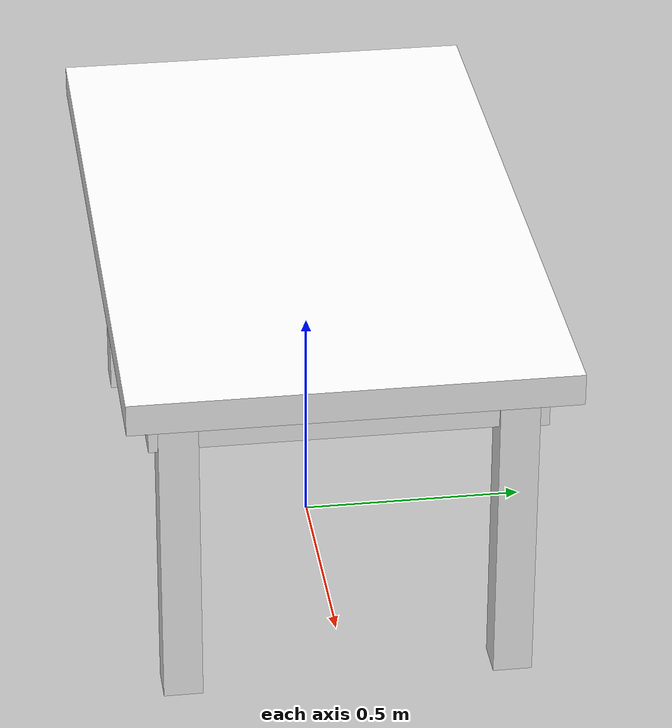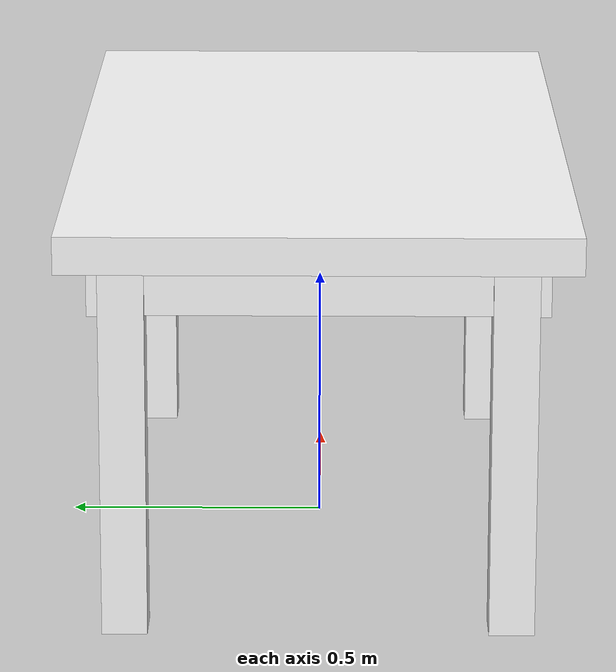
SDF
<?xml version="1.0"?>
<sdf version="1.9">
  <model name="table">
    <static>true</static>
    <link name="body">

      <collision name="top_collision">
        <pose>0 0 0.75 0 0 0</pose>
        <geometry><box><size>1.60 0.95 0.07</size></box></geometry>
      </collision>
      <visual name="top_visual">
        <pose>0 0 0.75 0 0 0</pose>
        <geometry><box><size>1.60 0.95 0.07</size></box></geometry>
        <material>
          <ambient>1 1 1 1</ambient>
          <diffuse>1 1 1 1</diffuse>
          <specular>0.05 0.05 0.05 1</specular>
          <pbr>
            <metal>
              <albedo_map>materials/textures/wood_albedo.png</albedo_map>
              <normal_map>materials/textures/wood_normal.png</normal_map>
              <roughness_map>materials/textures/wood_roughness.png</roughness_map>
              <metalness>0.0</metalness>
            </metal>
          </pbr>
        </material>
      </visual>

      <collision name="apron_left">
        <pose>0 0.39 0.67 0 0 0</pose>
        <geometry><box><size>1.40 0.065 0.12</size></box></geometry>
      </collision>
      <collision name="apron_right">
        <pose>0 -0.39 0.67 0 0 0</pose>
        <geometry><box><size>1.40 0.065 0.12</size></box></geometry>
      </collision>
      <collision name="apron_front">
        <pose>0.66 0 0.67 0 0 0</pose>
        <geometry><box><size>0.065 0.74 0.12</size></box></geometry>
      </collision>
      <collision name="apron_back">
        <pose>-0.66 0 0.67 0 0 0</pose>
        <geometry><box><size>0.065 0.74 0.12</size></box></geometry>
      </collision>

      <visual name="apron_left_visual">
        <pose>0 0.39 0.67 0 0 0</pose>
        <geometry><box><size>1.40 0.065 0.12</size></box></geometry>
        <material><ambient>1 1 1 1</ambient><diffuse>1 1 1 1</diffuse><specular>0.05 0.05 0.05 1</specular><pbr><metal><albedo_map>materials/textures/wood_albedo.png</albedo_map><normal_map>materials/textures/wood_normal.png</normal_map><roughness_map>materials/textures/wood_roughness.png</roughness_map><metalness>0.0</metalness></metal></pbr></material>
      </visual>
      <visual name="apron_right_visual">
        <pose>0 -0.39 0.67 0 0 0</pose>
        <geometry><box><size>1.40 0.065 0.12</size></box></geometry>
        <material><ambient>1 1 1 1</ambient><diffuse>1 1 1 1</diffuse><specular>0.05 0.05 0.05 1</specular><pbr><metal><albedo_map>materials/textures/wood_albedo.png</albedo_map><normal_map>materials/textures/wood_normal.png</normal_map><roughness_map>materials/textures/wood_roughness.png</roughness_map><metalness>0.0</metalness></metal></pbr></material>
      </visual>
      <visual name="apron_front_visual">
        <pose>0.66 0 0.67 0 0 0</pose>
        <geometry><box><size>0.065 0.74 0.12</size></box></geometry>
        <material><ambient>1 1 1 1</ambient><diffuse>1 1 1 1</diffuse><specular>0.05 0.05 0.05 1</specular><pbr><metal><albedo_map>materials/textures/wood_albedo.png</albedo_map><normal_map>materials/textures/wood_normal.png</normal_map><roughness_map>materials/textures/wood_roughness.png</roughness_map><metalness>0.0</metalness></metal></pbr></material>
      </visual>
      <visual name="apron_back_visual">
        <pose>-0.66 0 0.67 0 0 0</pose>
        <geometry><box><size>0.065 0.74 0.12</size></box></geometry>
        <material><ambient>1 1 1 1</ambient><diffuse>1 1 1 1</diffuse><specular>0.05 0.05 0.05 1</specular><pbr><metal><albedo_map>materials/textures/wood_albedo.png</albedo_map><normal_map>materials/textures/wood_normal.png</normal_map><roughness_map>materials/textures/wood_roughness.png</roughness_map><metalness>0.0</metalness></metal></pbr></material>
      </visual>

      <collision name="leg_fl">
        <pose>0.66 0.36 0.35 0 0 0</pose>
        <geometry><box><size>0.085 0.085 0.71</size></box></geometry>
      </collision>
      <collision name="leg_fr">
        <pose>0.66 -0.36 0.35 0 0 0</pose>
        <geometry><box><size>0.085 0.085 0.71</size></box></geometry>
      </collision>
      <collision name="leg_bl">
        <pose>-0.66 0.36 0.35 0 0 0</pose>
        <geometry><box><size>0.085 0.085 0.71</size></box></geometry>
      </collision>
      <collision name="leg_br">
        <pose>-0.66 -0.36 0.35 0 0 0</pose>
        <geometry><box><size>0.085 0.085 0.71</size></box></geometry>
      </collision>

      <visual name="leg_fl_visual">
        <pose>0.66 0.36 0.35 0 0 0</pose>
        <geometry><box><size>0.085 0.085 0.71</size></box></geometry>
        <material><ambient>1 1 1 1</ambient><diffuse>1 1 1 1</diffuse><specular>0.05 0.05 0.05 1</specular><pbr><metal><albedo_map>materials/textures/wood_albedo.png</albedo_map><normal_map>materials/textures/wood_normal.png</normal_map><roughness_map>materials/textures/wood_roughness.png</roughness_map><metalness>0.0</metalness></metal></pbr></material>
      </visual>
      <visual name="leg_fr_visual">
        <pose>0.66 -0.36 0.35 0 0 0</pose>
        <geometry><box><size>0.085 0.085 0.71</size></box></geometry>
        <material><ambient>1 1 1 1</ambient><diffuse>1 1 1 1</diffuse><specular>0.05 0.05 0.05 1</specular><pbr><metal><albedo_map>materials/textures/wood_albedo.png</albedo_map><normal_map>materials/textures/wood_normal.png</normal_map><roughness_map>materials/textures/wood_roughness.png</roughness_map><metalness>0.0</metalness></metal></pbr></material>
      </visual>
      <visual name="leg_bl_visual">
        <pose>-0.66 0.36 0.35 0 0 0</pose>
        <geometry><box><size>0.085 0.085 0.71</size></box></geometry>
        <material><ambient>1 1 1 1</ambient><diffuse>1 1 1 1</diffuse><specular>0.05 0.05 0.05 1</specular><pbr><metal><albedo_map>materials/textures/wood_albedo.png</albedo_map><normal_map>materials/textures/wood_normal.png</normal_map><roughness_map>materials/textures/wood_roughness.png</roughness_map><metalness>0.0</metalness></metal></pbr></material>
      </visual>
      <visual name="leg_br_visual">
        <pose>-0.66 -0.36 0.35 0 0 0</pose>
        <geometry><box><size>0.085 0.085 0.71</size></box></geometry>
        <material><ambient>1 1 1 1</ambient><diffuse>1 1 1 1</diffuse><specular>0.05 0.05 0.05 1</specular><pbr><metal><albedo_map>materials/textures/wood_albedo.png</albedo_map><normal_map>materials/textures/wood_normal.png</normal_map><roughness_map>materials/textures/wood_roughness.png</roughness_map><metalness>0.0</metalness></metal></pbr></material>
      </visual>

    </link>
  </model>
</sdf>
